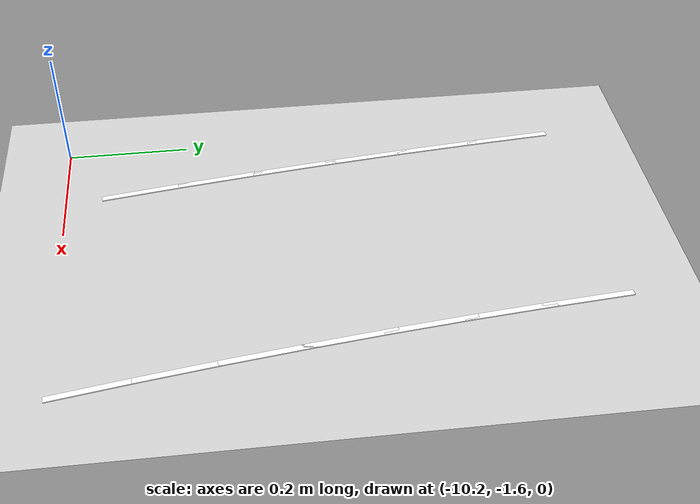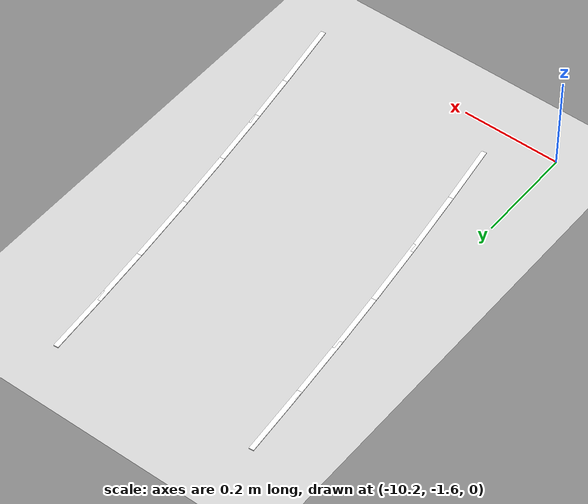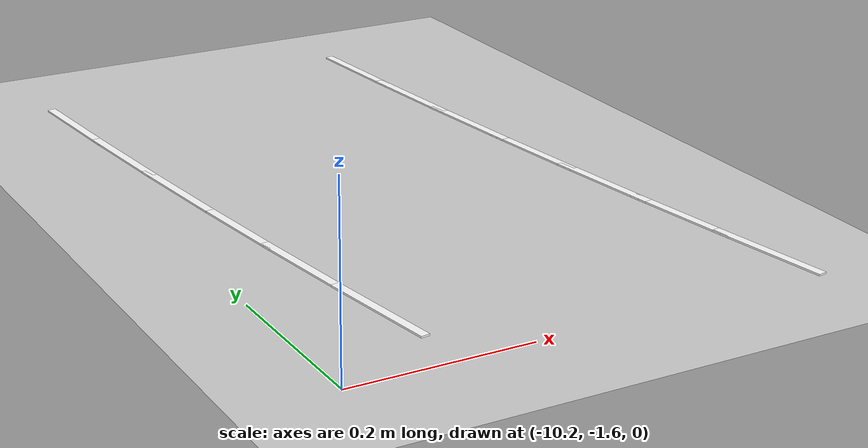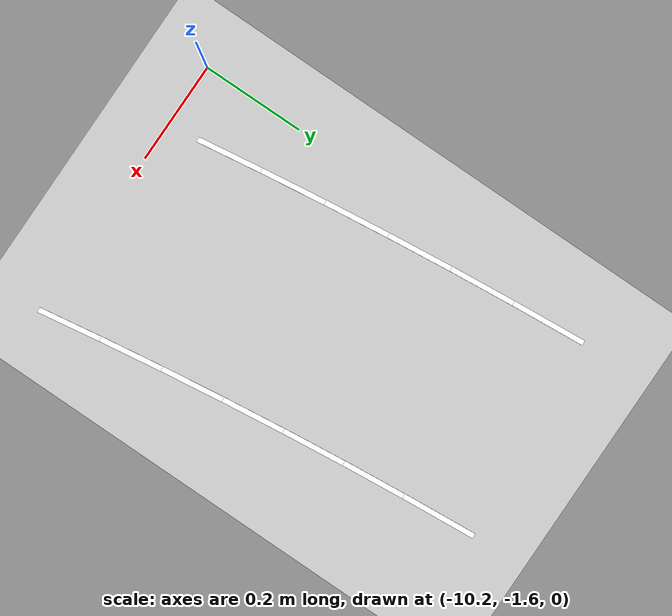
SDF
<sdf version="1.7">
 <world name="default">
  <model name="ground_plane">
   <static>1</static>
   <link name="link">
    <collision name="collision">
     <geometry><plane><normal>0 0 1</normal><size>100 100</size></plane></geometry>
     <surface>
      <contact><collide_bitmask>65535</collide_bitmask></contact>
      <friction><ode><mu>100</mu><mu2>50</mu2></ode></friction>
     </surface>
    </collision>
    <visual name="visual">
     <cast_shadows>0</cast_shadows>
     <geometry><plane><normal>0 0 1</normal><size>100 100</size></plane></geometry>
     <material>
      <script><uri>file://media/materials/scripts/gazebo.material</uri><name>Gazebo/Grey</name></script>
     </material>
    </visual>
   </link>
  </model>
  <model name="lane_line_left_256">
   <static>1</static>
   <link name="link">
    <pose>0 0 -0.004 0 -0 0</pose>
    <visual name="visual">
     <geometry><box><size>0.1457 0.01 0.01</size></box></geometry>
     <material><ambient>1 1 1 1</ambient><diffuse>1 1 1 1</diffuse></material>
    </visual>
    <collision name="collision"><geometry><box><size>0.1457 0.01 0.01</size></box></geometry></collision>
   </link>
   <pose>-9.76713 -0.799572 0 0 0 -1.48911</pose>
  </model>
  <model name="lane_line_right_256">
   <static>1</static>
   <link name="link">
    <pose>0 0 -0.004 0 -0 0</pose>
    <visual name="visual">
     <geometry><box><size>0.1457 0.01 0.01</size></box></geometry>
     <material><ambient>1 1 1 1</ambient><diffuse>1 1 1 1</diffuse></material>
    </visual>
    <collision name="collision"><geometry><box><size>0.1457 0.01 0.01</size></box></geometry></collision>
   </link>
   <pose>-10.1658 -0.832208 0 0 0 -1.48911</pose>
  </model>
  <model name="lane_line_left_257">
   <static>1</static>
   <link name="link">
    <pose>0 0 -0.004 0 -0 0</pose>
    <visual name="visual">
     <geometry><box><size>0.1457 0.01 0.01</size></box></geometry>
     <material><ambient>1 1 1 1</ambient><diffuse>1 1 1 1</diffuse></material>
    </visual>
    <collision name="collision"><geometry><box><size>0.1457 0.01 0.01</size></box></geometry></collision>
   </link>
   <pose>-9.75631 -0.922243 0 0 0 -1.47655</pose>
  </model>
  <model name="lane_line_right_257">
   <static>1</static>
   <link name="link">
    <pose>0 0 -0.004 0 -0 0</pose>
    <visual name="visual">
     <geometry><box><size>0.1457 0.01 0.01</size></box></geometry>
     <material><ambient>1 1 1 1</ambient><diffuse>1 1 1 1</diffuse></material>
    </visual>
    <collision name="collision"><geometry><box><size>0.1457 0.01 0.01</size></box></geometry></collision>
   </link>
   <pose>-10.1545 -0.959886 0 0 0 -1.47655</pose>
  </model>
  <model name="lane_line_left_258">
   <static>1</static>
   <link name="link">
    <pose>0 0 -0.004 0 -0 0</pose>
    <visual name="visual">
     <geometry><box><size>0.1457 0.01 0.01</size></box></geometry>
     <material><ambient>1 1 1 1</ambient><diffuse>1 1 1 1</diffuse></material>
    </visual>
    <collision name="collision"><geometry><box><size>0.1457 0.01 0.01</size></box></geometry></collision>
   </link>
   <pose>-9.74395 -1.04477 0 0 0 -1.46398</pose>
  </model>
  <model name="lane_line_right_258">
   <static>1</static>
   <link name="link">
    <pose>0 0 -0.004 0 -0 0</pose>
    <visual name="visual">
     <geometry><box><size>0.1457 0.01 0.01</size></box></geometry>
     <material><ambient>1 1 1 1</ambient><diffuse>1 1 1 1</diffuse></material>
    </visual>
    <collision name="collision"><geometry><box><size>0.1457 0.01 0.01</size></box></geometry></collision>
   </link>
   <pose>-10.1417 -1.08741 0 0 0 -1.46398</pose>
  </model>
  <model name="lane_line_left_259">
   <static>1</static>
   <link name="link">
    <pose>0 0 -0.004 0 -0 0</pose>
    <visual name="visual">
     <geometry><box><size>0.1457 0.01 0.01</size></box></geometry>
     <material><ambient>1 1 1 1</ambient><diffuse>1 1 1 1</diffuse></material>
    </visual>
    <collision name="collision"><geometry><box><size>0.1457 0.01 0.01</size></box></geometry></collision>
   </link>
   <pose>-9.73005 -1.16713 0 0 0 -1.45142</pose>
  </model>
  <model name="lane_line_right_259">
   <static>1</static>
   <link name="link">
    <pose>0 0 -0.004 0 -0 0</pose>
    <visual name="visual">
     <geometry><box><size>0.1457 0.01 0.01</size></box></geometry>
     <material><ambient>1 1 1 1</ambient><diffuse>1 1 1 1</diffuse></material>
    </visual>
    <collision name="collision"><geometry><box><size>0.1457 0.01 0.01</size></box></geometry></collision>
   </link>
   <pose>-10.1272 -1.21477 0 0 0 -1.45142</pose>
  </model>
  <model name="lane_line_left_260">
   <static>1</static>
   <link name="link">
    <pose>0 0 -0.004 0 -0 0</pose>
    <visual name="visual">
     <geometry><box><size>0.1457 0.01 0.01</size></box></geometry>
     <material><ambient>1 1 1 1</ambient><diffuse>1 1 1 1</diffuse></material>
    </visual>
    <collision name="collision"><geometry><box><size>0.1457 0.01 0.01</size></box></geometry></collision>
   </link>
   <pose>-9.71462 -1.2893 0 0 0 -1.43885</pose>
  </model>
  <model name="lane_line_right_260">
   <static>1</static>
   <link name="link">
    <pose>0 0 -0.004 0 -0 0</pose>
    <visual name="visual">
     <geometry><box><size>0.1457 0.01 0.01</size></box></geometry>
     <material><ambient>1 1 1 1</ambient><diffuse>1 1 1 1</diffuse></material>
    </visual>
    <collision name="collision"><geometry><box><size>0.1457 0.01 0.01</size></box></geometry></collision>
   </link>
   <pose>-10.1111 -1.34193 0 0 0 -1.43885</pose>
  </model>
  <model name="lane_line_left_261">
   <static>1</static>
   <link name="link">
    <pose>0 0 -0.004 0 -0 0</pose>
    <visual name="visual">
     <geometry><box><size>0.1457 0.01 0.01</size></box></geometry>
     <material><ambient>1 1 1 1</ambient><diffuse>1 1 1 1</diffuse></material>
    </visual>
    <collision name="collision"><geometry><box><size>0.1457 0.01 0.01</size></box></geometry></collision>
   </link>
   <pose>-9.69765 -1.41128 0 0 0 -1.42628</pose>
  </model>
  <model name="lane_line_right_261">
   <static>1</static>
   <link name="link">
    <pose>0 0 -0.004 0 -0 0</pose>
    <visual name="visual">
     <geometry><box><size>0.1457 0.01 0.01</size></box></geometry>
     <material><ambient>1 1 1 1</ambient><diffuse>1 1 1 1</diffuse></material>
    </visual>
    <collision name="collision"><geometry><box><size>0.1457 0.01 0.01</size></box></geometry></collision>
   </link>
   <pose>-10.0935 -1.46888 0 0 0 -1.42628</pose>
  </model>
  <model name="lane_line_left_262">
   <static>1</static>
   <link name="link">
    <pose>0 0 -0.004 0 -0 0</pose>
    <visual name="visual">
     <geometry><box><size>0.1457 0.01 0.01</size></box></geometry>
     <material><ambient>1 1 1 1</ambient><diffuse>1 1 1 1</diffuse></material>
    </visual>
    <collision name="collision"><geometry><box><size>0.1457 0.01 0.01</size></box></geometry></collision>
   </link>
   <pose>-9.67915 -1.53303 0 0 0 -1.41372</pose>
  </model>
 </world>
</sdf>
